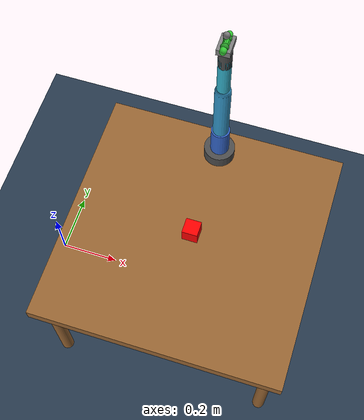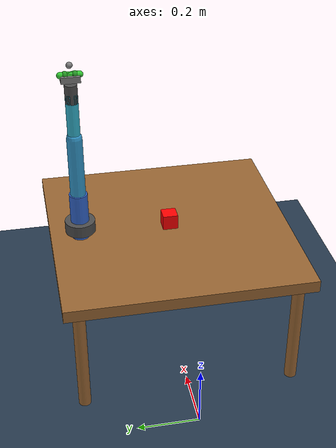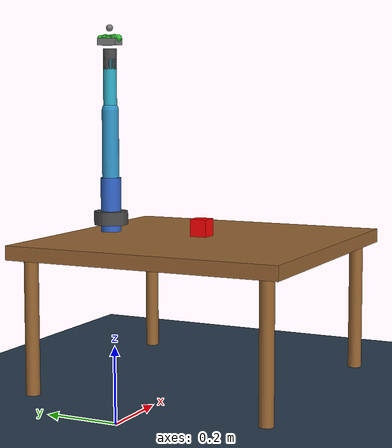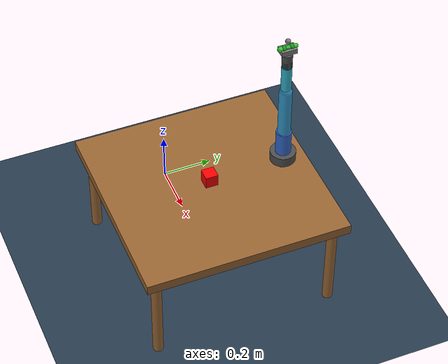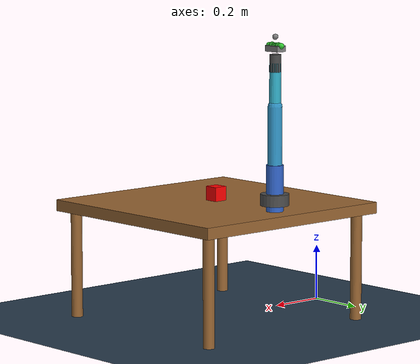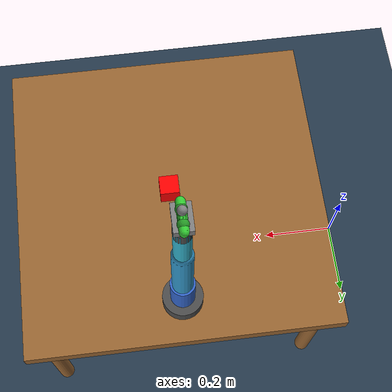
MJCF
<mujoco model="robot_arm_gripper">
  <compiler angle="radian" coordinate="local" inertiafromgeom="true"/>

  <option timestep="0.002" gravity="0 0 -9.81">
    <flag warmstart="enable"/>
  </option>

  <visual>
    <rgba haze="0.15 0.25 0.35 1"/>
    <quality shadowsize="2048"/>
    <map stiffness="700" shadowscale="0.5" fogstart="10" fogend="15" zfar="40" haze="0.3"/>
  </visual>

  <asset>
    <texture type="skybox" builtin="gradient" rgb1="0.3 0.5 0.7" rgb2="0 0 0" width="512" height="512"/>
    <texture name="texplane" type="2d" builtin="checker" rgb1=".2 .3 .4" rgb2=".1 0.15 0.2" width="512" height="512" mark="cross" markrgb=".8 .8 .8"/>
    <material name="matplane" reflectance="0.3" texture="texplane" texrepeat="1 1" texuniform="true"/>
  </asset>

  <default>
    <joint damping="0.5" armature="0.01"/>
    <geom condim="3" friction="1 0.005 0.0001" solimp="0.9 0.95 0.001" solref="0.02 1"/>
  </default>

  <worldbody>
    <light directional="true" diffuse=".8 .8 .8" specular="0.3 0.3 0.3" pos="0 0 5" dir="0 0 -1"/>
    <light directional="true" diffuse=".6 .6 .6" specular="0.2 0.2 0.2" pos="1 1 4" dir="-1 -1 -1"/>

    <!-- Ground plane (make collidable) -->
    <geom name="floor" pos="0 0 0" size="0 0 0.05" type="plane" material="matplane"
          contype="1" conaffinity="1" mass="1000" friction="1 0.005 0.0001" solimp="0.9 0.95 0.001" solref="0.02 1"/>

    <!-- Table -->
    <body name="table" pos="0.5 0 0">
      <geom name="table_top" type="box" size="0.4 0.4 0.02" pos="0 0 0.4"
            rgba="0.6 0.4 0.2 1" contype="1" conaffinity="1" mass="10"
            friction="1 0.005 0.0001" solimp="0.9 0.95 0.001" solref="0.02 1"/>
      <geom name="table_leg1" type="cylinder" size="0.02 0.19" pos="0.35 0.35 0.19"
            rgba="0.6 0.4 0.2 1" contype="1" conaffinity="1" mass="2"/>
      <geom name="table_leg2" type="cylinder" size="0.02 0.19" pos="0.35 -0.35 0.19"
            rgba="0.6 0.4 0.2 1" contype="1" conaffinity="1" mass="2"/>
      <geom name="table_leg3" type="cylinder" size="0.02 0.19" pos="-0.35 0.35 0.19"
            rgba="0.6 0.4 0.2 1" contype="1" conaffinity="1" mass="2"/>
      <geom name="table_leg4" type="cylinder" size="0.02 0.19" pos="-0.35 -0.35 0.19"
            rgba="0.6 0.4 0.2 1" contype="1" conaffinity="1" mass="2"/>
    </body>

    <!-- Cube to be grasped - placed on table -->
    <body name="cube" pos="0.5 0 0.4475">
      <joint name="cube_free" type="free" damping="0.5"/>
      <geom name="cube_geom" type="box" size="0.025 0.025 0.025" rgba="1 0 0 1"
            mass="0.05" friction="1.5 0.005 0.0001" solimp="0.99 0.99 0.001" solref="0.01 1"
            contype="1" conaffinity="1"/>
      <site name="cube_center" pos="0 0 0" size="0.01"/>
    </body>

    <!-- Robot Arm Base - positioned on table surface near cube
         nudged slightly up to avoid initial overlap -->
    <body name="base" pos="0.5 0.3 0.461">
      <geom name="base_geom" type="cylinder" size="0.05 0.02" rgba="0.3 0.3 0.3 1"
            mass="1" contype="1" conaffinity="1" friction="1 0.005 0.0001"/>

      <!-- Link 1 (shoulder rotation) -->
      <body name="link1" pos="0 0 0.02">
        <joint name="shoulder_pan" type="hinge" axis="0 0 1" range="-3.14 3.14" damping="1.0" armature="0.1"/>
        <geom name="link1_geom" type="cylinder" size="0.03 0.1" rgba="0.2 0.4 0.8 1"
              mass="0.5" contype="1" conaffinity="1"/>

        <!-- Link 2 (shoulder lift) -->
        <body name="link2" pos="0 0 0.1">
          <joint name="shoulder_lift" type="hinge" axis="0 1 0" range="-1.57 1.57" damping="1.0" armature="0.1"/>
          <geom name="link2_geom" type="capsule" fromto="0 0 0 0 0 0.2" size="0.025" rgba="0.2 0.6 0.8 1"
                mass="0.4" contype="1" conaffinity="1"/>

          <!-- Link 3 (elbow) -->
          <body name="link3" pos="0 0 0.2">
            <joint name="elbow" type="hinge" axis="0 1 0" range="-2.5 2.5" damping="0.5" armature="0.05"/>
            <geom name="link3_geom" type="capsule" fromto="0 0 0 0 0 0.15" size="0.02" rgba="0.2 0.7 0.8 1"
                  mass="0.3" contype="1" conaffinity="1"/>

            <!-- Link 4 (wrist) -->
            <body name="link4" pos="0 0 0.15">
              <joint name="wrist" type="hinge" axis="0 0 1" range="-3.14 3.14" damping="0.3" armature="0.02"/>
              <geom name="link4_geom" type="cylinder" size="0.02 0.03" rgba="0.3 0.3 0.3 1"
                    mass="0.2" contype="1" conaffinity="1"/>

              <!-- Gripper base and Option A hinge gripper -->
              <body name="gripper_base" pos="0 0 0.05">
                <geom name="gripper_base_geom" type="box" size="0.02 0.03 0.01" rgba="0.5 0.5 0.5 1"
                      mass="0.1" contype="1" conaffinity="1"/>

                <site name="gripper_site" pos="0 0 0.04" size="0.01"/>

                <!-- Left finger (hinge) -->
                <body name="left_finger" pos="0 0.03 0.01">
                  <!-- hinge axis points so closing rotates inward toward -y -->
                  <joint name="left_finger_hinge" type="hinge" axis="0 0 1" range="-1.57 0" damping="0.5" armature="0.001"/>
                  <!-- finger link -->
                  <geom name="left_finger_link" type="capsule" fromto="0 0 0 0 -0.04 0" size="0.01"
                        rgba="0.2 0.8 0.2 1" contype="1" conaffinity="1" mass="0.02"
                        friction="2.5 0.005 0.0001" solimp="0.99 0.99 0.001" solref="0.01 1"/>
                  <!-- rounded fingertip pad -->
                  <geom name="left_finger_pad" type="sphere" pos="0 -0.045 0" size="0.012"
                        rgba="0.15 0.6 0.15 1" contype="1" conaffinity="1" mass="0.002"
                        friction="4 0.005 0.0001" solimp="0.99 0.999 0.001" solref="0.005 1"/>
                  <site name="left_tip_site" pos="0 -0.045 0" size="0.005"/>
                </body>

                <!-- Right finger (hinge) -->
                <body name="right_finger" pos="0 -0.03 0.01">
                  <!-- hinge mirrored; closing rotates inward toward +y -->
                  <joint name="right_finger_hinge" type="hinge" axis="0 0 1" range="0 1.57" damping="0.5" armature="0.001"/>
                  <geom name="right_finger_link" type="capsule" fromto="0 0 0 0 0.04 0" size="0.01"
                        rgba="0.2 0.8 0.2 1" contype="1" conaffinity="1" mass="0.02"
                        friction="2.5 0.005 0.0001" solimp="0.99 0.99 0.001" solref="0.01 1"/>
                  <geom name="right_finger_pad" type="sphere" pos="0 0.045 0" size="0.012"
                        rgba="0.15 0.6 0.15 1" contype="1" conaffinity="1" mass="0.002"
                        friction="4 0.005 0.0001" solimp="0.99 0.999 0.001" solref="0.005 1"/>
                  <site name="right_tip_site" pos="0 0.045 0" size="0.005"/>
                </body>
              </body>
            </body>
          </body>
        </body>
      </body>
    </body>
  </worldbody>

  <actuator>
    <motor name="shoulder_pan_motor" joint="shoulder_pan" gear="50" ctrllimited="true" ctrlrange="-1 1"/>
    <motor name="shoulder_lift_motor" joint="shoulder_lift" gear="50" ctrllimited="true" ctrlrange="-1 1"/>
    <motor name="elbow_motor" joint="elbow" gear="30" ctrllimited="true" ctrlrange="-1 1"/>
    <motor name="wrist_motor" joint="wrist" gear="20" ctrllimited="true" ctrlrange="-1 1"/>
    <!-- Gripper actuators: hinge motors for Option A -->
    <motor name="left_finger_motor" joint="left_finger_hinge" gear="40" ctrllimited="true" ctrlrange="-1 1"/>
    <motor name="right_finger_motor" joint="right_finger_hinge" gear="40" ctrllimited="true" ctrlrange="-1 1"/>
  </actuator>

  <sensor>
    <jointpos name="shoulder_pan_pos" joint="shoulder_pan"/>
    <jointvel name="shoulder_pan_vel" joint="shoulder_pan"/>
    <jointpos name="shoulder_lift_pos" joint="shoulder_lift"/>
    <jointvel name="shoulder_lift_vel" joint="shoulder_lift"/>
    <jointpos name="elbow_pos" joint="elbow"/>
    <jointvel name="elbow_vel" joint="elbow"/>
    <jointpos name="wrist_pos" joint="wrist"/>
    <jointvel name="wrist_vel" joint="wrist"/>

    <!-- sensors for new gripper joints -->
    <jointpos name="left_finger_pos" joint="left_finger_hinge"/>
    <jointvel name="left_finger_vel" joint="left_finger_hinge"/>
    <jointpos name="right_finger_pos" joint="right_finger_hinge"/>
    <jointvel name="right_finger_vel" joint="right_finger_hinge"/>

    <framepos name="gripper_pos" objtype="site" objname="gripper_site"/>
    <framequat name="gripper_quat" objtype="site" objname="gripper_site"/>
    <framepos name="cube_pos" objtype="site" objname="cube_center"/>
    <framequat name="cube_quat" objtype="site" objname="cube_center"/>
  </sensor>

  <contact>
    <!-- Keep immediate-adjacent self-collision excludes (prevents link self-collisions).
         These do NOT disable robot <-> environment contacts. -->
    <exclude body1="base" body2="link1"/>
    <exclude body1="link1" body2="link2"/>
    <exclude body1="link2" body2="link3"/>
    <exclude body1="link3" body2="link4"/>
    <exclude body1="link4" body2="gripper_base"/>
    <exclude body1="gripper_base" body2="left_finger"/>
    <exclude body1="gripper_base" body2="right_finger"/>
    <exclude body1="left_finger" body2="right_finger"/>
  </contact>

  <equality>
    <!-- Mirror the two gripper hinges so they move symmetrically (left + right = 0) -->
    <joint joint1="left_finger_hinge" joint2="right_finger_hinge" polycoef="0 1 1 0 0"/>
  </equality>
</mujoco>
